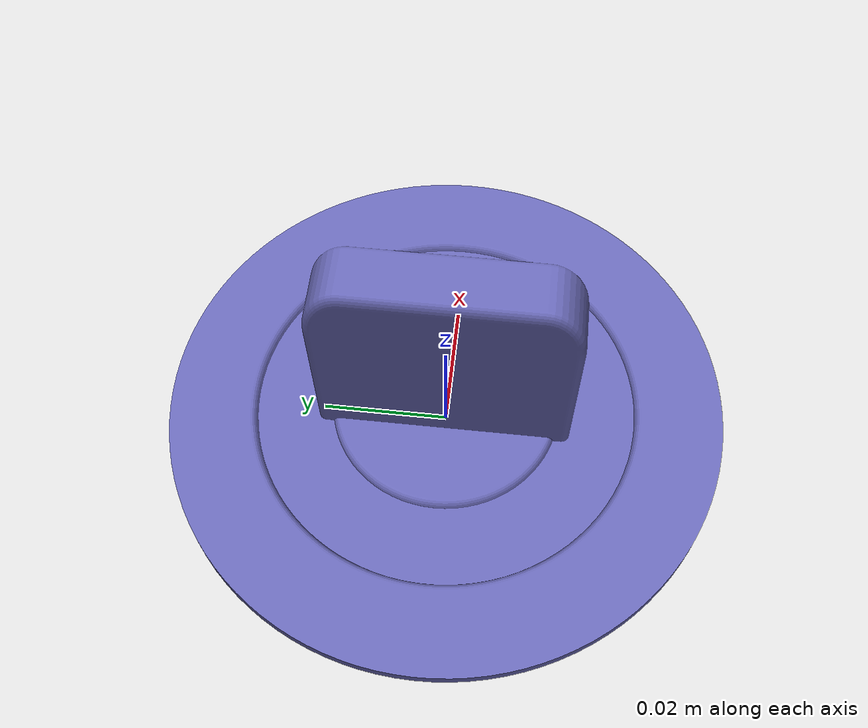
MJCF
<mujoco model="cup">

    <asset>
        <texture name="grid" type="2d" builtin="checker" width="512" height="512" rgb1="0 0.6 0.5" rgb2="1 1 1"/>
        <material name="grid" texture="grid" texrepeat="10 10" texuniform="true" reflectance=".2"/>
        <mesh name="lid_obj" file="meshes/lid.obj" scale=".0012 .0012 .002"/>
        <material name="floor" reflectance=".1"/>
    </asset>

    <worldbody>
        <body>
            <freejoint/>
            <body name="object" pos="0 0 0">
                <inertial pos="0 0 0" mass="0.05" diaginertia="0.001 0.001 0.001" />
                <geom pos="0 0 0" mesh="lid_obj" type="mesh" rgba="0.4 0.4 0.7 1" solimp="0.998 0.998 0.001" solref="0.001 1" density="100" friction="0.95 0.5 0.5" conaffinity="0" contype="0" group="1" condim="4"/>
                <geom type="box" group="0" rgba="0 0 0 0"  size="0.008 0.025 0.015" pos="0 0 0.025" euler="0 0 0.0" />
                <geom group="0" rgba="0 0 0 0"  type="cylinder" size="0.045 0.002" pos="0 0 0.0026"/>
            </body>
            <site rgba="0 0 0 0" size="0.005" pos="0 0 -0.06" name="bottom_site" />
            <site rgba="0 0 0 0" size="0.005" pos="0 0 0.04" name="top_site" />
            <site rgba="0 0 0 0" size="0.005" pos="0.025 0.025 0" name="horizontal_radius_site" />
        </body>
    </worldbody>
</mujoco>
